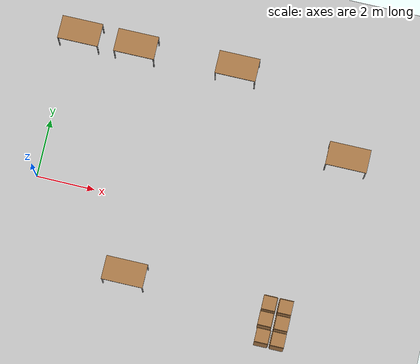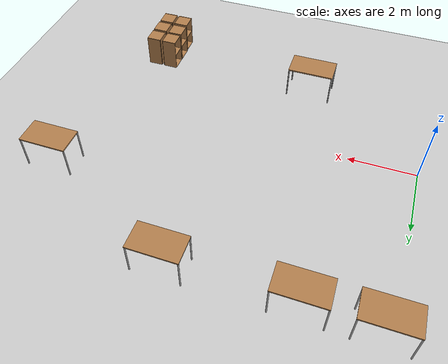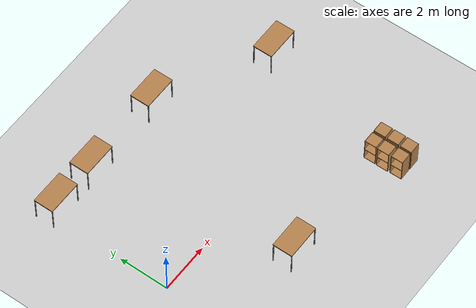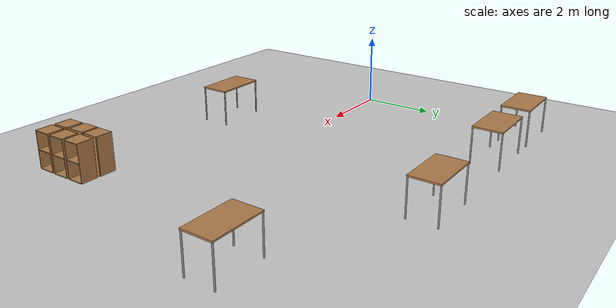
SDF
<sdf version="1.6">
 <world name="default">
  <model name="ground_plane">
   <static>1</static>
   <link name="link">
    <collision name="collision">
     <geometry><plane><normal>0 0 1</normal><size>100 100</size></plane></geometry>
     <surface><friction><ode><mu>100</mu><mu2>50</mu2></ode></friction></surface>
    </collision>
    <visual name="visual">
     <cast_shadows>0</cast_shadows>
     <geometry><plane><normal>0 0 1</normal><size>100 100</size></plane></geometry>
     <material>
      <script><uri>file://media/materials/scripts/gazebo.material</uri><name>Gazebo/Grey</name></script>
     </material>
    </visual>
   </link>
  </model>
  <model name="table_clone_2">
   <static>0</static>
   <link name="link">
    <collision name="surface">
     <pose>0 0 1 0 -0 0</pose>
     <geometry><box><size>1.5 0.8 0.03</size></box></geometry>
     <surface><friction><ode><mu>0.6</mu><mu2>0.6</mu2></ode></friction></surface>
    </collision>
    <visual name="visual1">
     <pose>0 0 1 0 -0 0</pose>
     <geometry><box><size>1.4 0.8 0.04</size></box></geometry>
     <material>
      <script><uri>file://media/materials/scripts/gazebo.material</uri><name>Gazebo/Wood</name></script>
     </material>
    </visual>
    <collision name="front_left_leg">
     <pose>0.68 0.38 0.5 0 -0 0</pose>
     <geometry><cylinder><radius>0.02</radius><length>1</length></cylinder></geometry>
    </collision>
    <visual name="front_left_leg">
     <pose>0.68 0.38 0.5 0 -0 0</pose>
     <geometry><cylinder><radius>0.02</radius><length>1</length></cylinder></geometry>
     <material>
      <script><uri>file://media/materials/scripts/gazebo.material</uri><name>Gazebo/Grey</name></script>
     </material>
    </visual>
    <collision name="front_right_leg">
     <pose>0.68 -0.38 0.5 0 -0 0</pose>
     <geometry><cylinder><radius>0.02</radius><length>1</length></cylinder></geometry>
    </collision>
    <visual name="front_right_leg">
     <pose>0.68 -0.38 0.5 0 -0 0</pose>
     <geometry><cylinder><radius>0.02</radius><length>1</length></cylinder></geometry>
     <material>
      <script><uri>file://media/materials/scripts/gazebo.material</uri><name>Gazebo/Grey</name></script>
     </material>
    </visual>
    <collision name="back_right_leg">
     <pose>-0.68 -0.38 0.5 0 -0 0</pose>
     <geometry><cylinder><radius>0.02</radius><length>1</length></cylinder></geometry>
    </collision>
    <visual name="back_right_leg">
     <pose>-0.68 -0.38 0.5 0 -0 0</pose>
     <geometry><cylinder><radius>0.02</radius><length>1</length></cylinder></geometry>
     <material>
      <script><uri>file://media/materials/scripts/gazebo.material</uri><name>Gazebo/Grey</name></script>
     </material>
    </visual>
    <collision name="back_left_leg">
     <pose>-0.68 0.38 0.5 0 -0 0</pose>
     <geometry><cylinder><radius>0.02</radius><length>1</length></cylinder></geometry>
    </collision>
    <visual name="back_left_leg">
     <pose>-0.68 0.38 0.5 0 -0 0</pose>
     <geometry><cylinder><radius>0.02</radius><length>1</length></cylinder></geometry>
     <material>
      <script><uri>file://media/materials/scripts/gazebo.material</uri><name>Gazebo/Grey</name></script>
     </material>
    </visual>
    <inertial>
     <inertia><ixx>1</ixx><ixy>0</ixy><ixz>0</ixz><iyy>1</iyy><iyz>0</iyz><izz>1</izz></inertia>
     <mass>1</mass>
    </inertial>
   </link>
   <pose>10.0761 2.81373 -4e-06 -2e-06 5e-06 -0</pose>
  </model>
  <model name="table_clone_4">
   <static>0</static>
   <link name="link">
    <collision name="surface">
     <pose>0 0 1 0 -0 0</pose>
     <geometry><box><size>1.5 0.8 0.03</size></box></geometry>
     <surface><friction><ode><mu>0.6</mu><mu2>0.6</mu2></ode></friction></surface>
    </collision>
    <visual name="visual1">
     <pose>0 0 1 0 -0 0</pose>
     <geometry><box><size>1.4 0.8 0.04</size></box></geometry>
     <material>
      <script><uri>file://media/materials/scripts/gazebo.material</uri><name>Gazebo/Wood</name></script>
     </material>
    </visual>
    <collision name="front_left_leg">
     <pose>0.68 0.38 0.5 0 -0 0</pose>
     <geometry><cylinder><radius>0.02</radius><length>1</length></cylinder></geometry>
    </collision>
    <visual name="front_left_leg">
     <pose>0.68 0.38 0.5 0 -0 0</pose>
     <geometry><cylinder><radius>0.02</radius><length>1</length></cylinder></geometry>
     <material>
      <script><uri>file://media/materials/scripts/gazebo.material</uri><name>Gazebo/Grey</name></script>
     </material>
    </visual>
    <collision name="front_right_leg">
     <pose>0.68 -0.38 0.5 0 -0 0</pose>
     <geometry><cylinder><radius>0.02</radius><length>1</length></cylinder></geometry>
    </collision>
    <visual name="front_right_leg">
     <pose>0.68 -0.38 0.5 0 -0 0</pose>
     <geometry><cylinder><radius>0.02</radius><length>1</length></cylinder></geometry>
     <material>
      <script><uri>file://media/materials/scripts/gazebo.material</uri><name>Gazebo/Grey</name></script>
     </material>
    </visual>
    <collision name="back_right_leg">
     <pose>-0.68 -0.38 0.5 0 -0 0</pose>
     <geometry><cylinder><radius>0.02</radius><length>1</length></cylinder></geometry>
    </collision>
    <visual name="back_right_leg">
     <pose>-0.68 -0.38 0.5 0 -0 0</pose>
     <geometry><cylinder><radius>0.02</radius><length>1</length></cylinder></geometry>
     <material>
      <script><uri>file://media/materials/scripts/gazebo.material</uri><name>Gazebo/Grey</name></script>
     </material>
    </visual>
    <collision name="back_left_leg">
     <pose>-0.68 0.38 0.5 0 -0 0</pose>
     <geometry><cylinder><radius>0.02</radius><length>1</length></cylinder></geometry>
    </collision>
    <visual name="back_left_leg">
     <pose>-0.68 0.38 0.5 0 -0 0</pose>
     <geometry><cylinder><radius>0.02</radius><length>1</length></cylinder></geometry>
     <material>
      <script><uri>file://media/materials/scripts/gazebo.material</uri><name>Gazebo/Grey</name></script>
     </material>
    </visual>
    <inertial>
     <inertia><ixx>1</ixx><ixy>0</ixy><ixz>0</ixz><iyy>1</iyy><iyz>0</iyz><izz>1</izz></inertia>
     <mass>1</mass>
    </inertial>
   </link>
   <pose>2.28726 5.00748 -1e-06 0 1e-06 0</pose>
  </model>
  <model name="table_clone_5">
   <static>0</static>
   <link name="link">
    <collision name="surface">
     <pose>0 0 1 0 -0 0</pose>
     <geometry><box><size>1.5 0.8 0.03</size></box></geometry>
     <surface><friction><ode><mu>0.6</mu><mu2>0.6</mu2></ode></friction></surface>
    </collision>
    <visual name="visual1">
     <pose>0 0 1 0 -0 0</pose>
     <geometry><box><size>1.4 0.8 0.04</size></box></geometry>
     <material>
      <script><uri>file://media/materials/scripts/gazebo.material</uri><name>Gazebo/Wood</name></script>
     </material>
    </visual>
    <collision name="front_left_leg">
     <pose>0.68 0.38 0.5 0 -0 0</pose>
     <geometry><cylinder><radius>0.02</radius><length>1</length></cylinder></geometry>
    </collision>
    <visual name="front_left_leg">
     <pose>0.68 0.38 0.5 0 -0 0</pose>
     <geometry><cylinder><radius>0.02</radius><length>1</length></cylinder></geometry>
     <material>
      <script><uri>file://media/materials/scripts/gazebo.material</uri><name>Gazebo/Grey</name></script>
     </material>
    </visual>
    <collision name="front_right_leg">
     <pose>0.68 -0.38 0.5 0 -0 0</pose>
     <geometry><cylinder><radius>0.02</radius><length>1</length></cylinder></geometry>
    </collision>
    <visual name="front_right_leg">
     <pose>0.68 -0.38 0.5 0 -0 0</pose>
     <geometry><cylinder><radius>0.02</radius><length>1</length></cylinder></geometry>
     <material>
      <script><uri>file://media/materials/scripts/gazebo.material</uri><name>Gazebo/Grey</name></script>
     </material>
    </visual>
    <collision name="back_right_leg">
     <pose>-0.68 -0.38 0.5 0 -0 0</pose>
     <geometry><cylinder><radius>0.02</radius><length>1</length></cylinder></geometry>
    </collision>
    <visual name="back_right_leg">
     <pose>-0.68 -0.38 0.5 0 -0 0</pose>
     <geometry><cylinder><radius>0.02</radius><length>1</length></cylinder></geometry>
     <material>
      <script><uri>file://media/materials/scripts/gazebo.material</uri><name>Gazebo/Grey</name></script>
     </material>
    </visual>
    <collision name="back_left_leg">
     <pose>-0.68 0.38 0.5 0 -0 0</pose>
     <geometry><cylinder><radius>0.02</radius><length>1</length></cylinder></geometry>
    </collision>
    <visual name="back_left_leg">
     <pose>-0.68 0.38 0.5 0 -0 0</pose>
     <geometry><cylinder><radius>0.02</radius><length>1</length></cylinder></geometry>
     <material>
      <script><uri>file://media/materials/scripts/gazebo.material</uri><name>Gazebo/Grey</name></script>
     </material>
    </visual>
    <inertial>
     <inertia><ixx>1</ixx><ixy>0</ixy><ixz>0</ixz><iyy>1</iyy><iyz>0</iyz><izz>1</izz></inertia>
     <mass>1</mass>
    </inertial>
   </link>
   <pose>5.78409 5.03322 -9e-06 0 -1e-06 0</pose>
  </model>
  <model name="table_clone_7">
   <static>0</static>
   <link name="link">
    <collision name="surface">
     <pose>0 0 1 0 -0 0</pose>
     <geometry><box><size>1.5 0.8 0.03</size></box></geometry>
     <surface><friction><ode><mu>0.6</mu><mu2>0.6</mu2></ode></friction></surface>
    </collision>
    <visual name="visual1">
     <pose>0 0 1 0 -0 0</pose>
     <geometry><box><size>1.4 0.8 0.04</size></box></geometry>
     <material>
      <script><uri>file://media/materials/scripts/gazebo.material</uri><name>Gazebo/Wood</name></script>
     </material>
    </visual>
    <collision name="front_left_leg">
     <pose>0.68 0.38 0.5 0 -0 0</pose>
     <geometry><cylinder><radius>0.02</radius><length>1</length></cylinder></geometry>
    </collision>
    <visual name="front_left_leg">
     <pose>0.68 0.38 0.5 0 -0 0</pose>
     <geometry><cylinder><radius>0.02</radius><length>1</length></cylinder></geometry>
     <material>
      <script><uri>file://media/materials/scripts/gazebo.material</uri><name>Gazebo/Grey</name></script>
     </material>
    </visual>
    <collision name="front_right_leg">
     <pose>0.68 -0.38 0.5 0 -0 0</pose>
     <geometry><cylinder><radius>0.02</radius><length>1</length></cylinder></geometry>
    </collision>
    <visual name="front_right_leg">
     <pose>0.68 -0.38 0.5 0 -0 0</pose>
     <geometry><cylinder><radius>0.02</radius><length>1</length></cylinder></geometry>
     <material>
      <script><uri>file://media/materials/scripts/gazebo.material</uri><name>Gazebo/Grey</name></script>
     </material>
    </visual>
    <collision name="back_right_leg">
     <pose>-0.68 -0.38 0.5 0 -0 0</pose>
     <geometry><cylinder><radius>0.02</radius><length>1</length></cylinder></geometry>
    </collision>
    <visual name="back_right_leg">
     <pose>-0.68 -0.38 0.5 0 -0 0</pose>
     <geometry><cylinder><radius>0.02</radius><length>1</length></cylinder></geometry>
     <material>
      <script><uri>file://media/materials/scripts/gazebo.material</uri><name>Gazebo/Grey</name></script>
     </material>
    </visual>
    <collision name="back_left_leg">
     <pose>-0.68 0.38 0.5 0 -0 0</pose>
     <geometry><cylinder><radius>0.02</radius><length>1</length></cylinder></geometry>
    </collision>
    <visual name="back_left_leg">
     <pose>-0.68 0.38 0.5 0 -0 0</pose>
     <geometry><cylinder><radius>0.02</radius><length>1</length></cylinder></geometry>
     <material>
      <script><uri>file://media/materials/scripts/gazebo.material</uri><name>Gazebo/Grey</name></script>
     </material>
    </visual>
    <inertial>
     <inertia><ixx>1</ixx><ixy>0</ixy><ixz>0</ixz><iyy>1</iyy><iyz>0</iyz><izz>1</izz></inertia>
     <mass>1</mass>
    </inertial>
   </link>
   <pose>0.33942 5.0178 -9e-06 0 -1e-06 0</pose>
  </model>
  <model name="table_clone_6_clone_1">
   <static>0</static>
   <link name="link">
    <collision name="surface">
     <pose>0 0 1 0 -0 0</pose>
     <geometry><box><size>1.5 0.8 0.03</size></box></geometry>
     <surface><friction><ode><mu>0.6</mu><mu2>0.6</mu2></ode></friction></surface>
    </collision>
    <visual name="visual1">
     <pose>0 0 1 0 -0 0</pose>
     <geometry><box><size>1.4 0.8 0.04</size></box></geometry>
     <material>
      <script><uri>file://media/materials/scripts/gazebo.material</uri><name>Gazebo/Wood</name></script>
     </material>
    </visual>
    <collision name="front_left_leg">
     <pose>0.68 0.38 0.5 0 -0 0</pose>
     <geometry><cylinder><radius>0.02</radius><length>1</length></cylinder></geometry>
    </collision>
    <visual name="front_left_leg">
     <pose>0.68 0.38 0.5 0 -0 0</pose>
     <geometry><cylinder><radius>0.02</radius><length>1</length></cylinder></geometry>
     <material>
      <script><uri>file://media/materials/scripts/gazebo.material</uri><name>Gazebo/Grey</name></script>
     </material>
    </visual>
    <collision name="front_right_leg">
     <pose>0.68 -0.38 0.5 0 -0 0</pose>
     <geometry><cylinder><radius>0.02</radius><length>1</length></cylinder></geometry>
    </collision>
    <visual name="front_right_leg">
     <pose>0.68 -0.38 0.5 0 -0 0</pose>
     <geometry><cylinder><radius>0.02</radius><length>1</length></cylinder></geometry>
     <material>
      <script><uri>file://media/materials/scripts/gazebo.material</uri><name>Gazebo/Grey</name></script>
     </material>
    </visual>
    <collision name="back_right_leg">
     <pose>-0.68 -0.38 0.5 0 -0 0</pose>
     <geometry><cylinder><radius>0.02</radius><length>1</length></cylinder></geometry>
    </collision>
    <visual name="back_right_leg">
     <pose>-0.68 -0.38 0.5 0 -0 0</pose>
     <geometry><cylinder><radius>0.02</radius><length>1</length></cylinder></geometry>
     <material>
      <script><uri>file://media/materials/scripts/gazebo.material</uri><name>Gazebo/Grey</name></script>
     </material>
    </visual>
    <collision name="back_left_leg">
     <pose>-0.68 0.38 0.5 0 -0 0</pose>
     <geometry><cylinder><radius>0.02</radius><length>1</length></cylinder></geometry>
    </collision>
    <visual name="back_left_leg">
     <pose>-0.68 0.38 0.5 0 -0 0</pose>
     <geometry><cylinder><radius>0.02</radius><length>1</length></cylinder></geometry>
     <material>
      <script><uri>file://media/materials/scripts/gazebo.material</uri><name>Gazebo/Grey</name></script>
     </material>
    </visual>
    <inertial>
     <inertia><ixx>1</ixx><ixy>0</ixy><ixz>0</ixz><iyy>1</iyy><iyz>0</iyz><izz>1</izz></inertia>
     <mass>1</mass>
    </inertial>
   </link>
   <pose>3.73124 -2.62043 -1e-06 -1e-06 0 0</pose>
  </model>
  <model name="cabinet">
   <static>1</static>
   <link name="cabinet_bottom_plate">
    <inertial>
     <pose>0 0 -1 0 -0 0</pose>
     <inertia><ixx>2.05</ixx><ixy>0</ixy><ixz>0</ixz><iyy>2.05</iyy><iyz>0</iyz><izz>2.05</izz></inertia>
     <mass>25</mass>
    </inertial>
    <collision name="cabinet_bottom_plate_geom">
     <pose>0 0 0.01 0 -0 0</pose>
     <geometry><box><size>0.45 0.45 0.02</size></box></geometry>
    </collision>
    <visual name="cabinet_bottom_plate_geom_visual">
     <pose>0 0 0.01 0 -0 0</pose>
     <geometry><box><size>0.45 0.45 0.02</size></box></geometry>
     <material>
      <script><uri>file://media/materials/scripts/gazebo.material</uri><name>Gazebo/Wood</name></script>
     </material>
    </visual>
    <collision name="cabinet_bottom_plate_geom_cabinet_back_plate">
     <pose>0.235 0 0.51 0 -0 0</pose>
     <geometry><box><size>0.02 0.45 1.02</size></box></geometry>
    </collision>
    <visual name="cabinet_bottom_plate_geom_cabinet_back_plate_visual">
     <pose>0.235 0 0.51 0 -0 0</pose>
     <geometry><box><size>0.02 0.45 1.02</size></box></geometry>
     <material>
      <script><uri>file://media/materials/scripts/gazebo.material</uri><name>Gazebo/Wood</name></script>
     </material>
    </visual>
    <collision name="cabinet_bottom_plate_geom_cabinet_left_plate">
     <pose>0 0.235 0.51 0 -0 0</pose>
     <geometry><box><size>0.45 0.02 1.02</size></box></geometry>
    </collision>
    <visual name="cabinet_bottom_plate_geom_cabinet_left_plate_visual">
     <pose>0 0.235 0.51 0 -0 0</pose>
     <geometry><box><size>0.45 0.02 1.02</size></box></geometry>
     <material>
      <script><uri>file://media/materials/scripts/gazebo.material</uri><name>Gazebo/Wood</name></script>
     </material>
    </visual>
    <collision name="cabinet_bottom_plate_geom_cabinet_middle_plate">
     <pose>0 0 0.51 0 -0 0</pose>
     <geometry><box><size>0.45 0.45 0.02</size></box></geometry>
    </collision>
    <visual name="cabinet_bottom_plate_geom_cabinet_middle_plate_visual">
     <pose>0 0 0.51 0 -0 0</pose>
     <geometry><box><size>0.45 0.45 0.02</size></box></geometry>
     <material>
      <script><uri>file://media/materials/scripts/gazebo.material</uri><name>Gazebo/Wood</name></script>
     </material>
    </visual>
    <collision name="cabinet_bottom_plate_geom_cabinet_right_plate">
     <pose>0 -0.235 0.51 0 -0 0</pose>
     <geometry><box><size>0.45 0.02 1.02</size></box></geometry>
    </collision>
    <visual name="cabinet_bottom_plate_geom_cabinet_right_plate_visual">
     <pose>0 -0.235 0.51 0 -0 0</pose>
     <geometry><box><size>0.45 0.02 1.02</size></box></geometry>
     <material>
      <script><uri>file://media/materials/scripts/gazebo.material</uri><name>Gazebo/Wood</name></script>
     </material>
    </visual>
    <collision name="cabinet_bottom_plate_geom_cabinet_top_plate">
     <pose>0 0 1.01 0 -0 0</pose>
     <geometry><box><size>0.45 0.45 0.02</size></box></geometry>
    </collision>
    <visual name="cabinet_bottom_plate_geom_cabinet_top_plate_visual">
     <pose>0 0 1.01 0 -0 0</pose>
     <geometry><box><size>0.45 0.45 0.02</size></box></geometry>
     <material>
      <script><uri>file://media/materials/scripts/gazebo.material</uri><name>Gazebo/Wood</name></script>
     </material>
    </visual>
   </link>
   <pose>9.14426 -2.55915 0 0 0 -3.13642</pose>
  </model>
  <model name="cabinet_clone">
   <static>1</static>
   <link name="cabinet_bottom_plate">
    <inertial>
     <pose>0 0 -1 0 -0 0</pose>
     <inertia><ixx>2.05</ixx><ixy>0</ixy><ixz>0</ixz><iyy>2.05</iyy><iyz>0</iyz><izz>2.05</izz></inertia>
     <mass>25</mass>
    </inertial>
    <collision name="cabinet_bottom_plate_geom">
     <pose>0 0 0.01 0 -0 0</pose>
     <geometry><box><size>0.45 0.45 0.02</size></box></geometry>
    </collision>
    <visual name="cabinet_bottom_plate_geom_visual">
     <pose>0 0 0.01 0 -0 0</pose>
     <geometry><box><size>0.45 0.45 0.02</size></box></geometry>
     <material>
      <script><uri>file://media/materials/scripts/gazebo.material</uri><name>Gazebo/Wood</name></script>
     </material>
    </visual>
    <collision name="cabinet_bottom_plate_geom_cabinet_back_plate">
     <pose>0.235 0 0.51 0 -0 0</pose>
     <geometry><box><size>0.02 0.45 1.02</size></box></geometry>
    </collision>
    <visual name="cabinet_bottom_plate_geom_cabinet_back_plate_visual">
     <pose>0.235 0 0.51 0 -0 0</pose>
     <geometry><box><size>0.02 0.45 1.02</size></box></geometry>
     <material>
      <script><uri>file://media/materials/scripts/gazebo.material</uri><name>Gazebo/Wood</name></script>
     </material>
    </visual>
    <collision name="cabinet_bottom_plate_geom_cabinet_left_plate">
     <pose>0 0.235 0.51 0 -0 0</pose>
     <geometry><box><size>0.45 0.02 1.02</size></box></geometry>
    </collision>
    <visual name="cabinet_bottom_plate_geom_cabinet_left_plate_visual">
     <pose>0 0.235 0.51 0 -0 0</pose>
     <geometry><box><size>0.45 0.02 1.02</size></box></geometry>
     <material>
      <script><uri>file://media/materials/scripts/gazebo.material</uri><name>Gazebo/Wood</name></script>
     </material>
    </visual>
    <collision name="cabinet_bottom_plate_geom_cabinet_middle_plate">
     <pose>0 0 0.51 0 -0 0</pose>
     <geometry><box><size>0.45 0.45 0.02</size></box></geometry>
    </collision>
    <visual name="cabinet_bottom_plate_geom_cabinet_middle_plate_visual">
     <pose>0 0 0.51 0 -0 0</pose>
     <geometry><box><size>0.45 0.45 0.02</size></box></geometry>
     <material>
      <script><uri>file://media/materials/scripts/gazebo.material</uri><name>Gazebo/Wood</name></script>
     </material>
    </visual>
    <collision name="cabinet_bottom_plate_geom_cabinet_right_plate">
     <pose>0 -0.235 0.51 0 -0 0</pose>
     <geometry><box><size>0.45 0.02 1.02</size></box></geometry>
    </collision>
    <visual name="cabinet_bottom_plate_geom_cabinet_right_plate_visual">
     <pose>0 -0.235 0.51 0 -0 0</pose>
     <geometry><box><size>0.45 0.02 1.02</size></box></geometry>
     <material>
      <script><uri>file://media/materials/scripts/gazebo.material</uri><name>Gazebo/Wood</name></script>
     </material>
    </visual>
    <collision name="cabinet_bottom_plate_geom_cabinet_top_plate">
     <pose>0 0 1.01 0 -0 0</pose>
     <geometry><box><size>0.45 0.45 0.02</size></box></geometry>
    </collision>
    <visual name="cabinet_bottom_plate_geom_cabinet_top_plate_visual">
     <pose>0 0 1.01 0 -0 0</pose>
     <geometry><box><size>0.45 0.45 0.02</size></box></geometry>
     <material>
      <script><uri>file://media/materials/scripts/gazebo.material</uri><name>Gazebo/Wood</name></script>
     </material>
    </visual>
   </link>
   <pose>8.59565 -2.55603 0 0 -0 0</pose>
  </model>
  <model name="cabinet_clone_clone">
   <static>1</static>
   <link name="cabinet_bottom_plate">
    <inertial>
     <pose>0 0 -1 0 -0 0</pose>
     <inertia><ixx>2.05</ixx><ixy>0</ixy><ixz>0</ixz><iyy>2.05</iyy><iyz>0</iyz><izz>2.05</izz></inertia>
     <mass>25</mass>
    </inertial>
    <collision name="cabinet_bottom_plate_geom">
     <pose>0 0 0.01 0 -0 0</pose>
     <geometry><box><size>0.45 0.45 0.02</size></box></geometry>
    </collision>
    <visual name="cabinet_bottom_plate_geom_visual">
     <pose>0 0 0.01 0 -0 0</pose>
     <geometry><box><size>0.45 0.45 0.02</size></box></geometry>
     <material>
      <script><uri>file://media/materials/scripts/gazebo.material</uri><name>Gazebo/Wood</name></script>
     </material>
    </visual>
    <collision name="cabinet_bottom_plate_geom_cabinet_back_plate">
     <pose>0.235 0 0.51 0 -0 0</pose>
     <geometry><box><size>0.02 0.45 1.02</size></box></geometry>
    </collision>
    <visual name="cabinet_bottom_plate_geom_cabinet_back_plate_visual">
     <pose>0.235 0 0.51 0 -0 0</pose>
     <geometry><box><size>0.02 0.45 1.02</size></box></geometry>
     <material>
      <script><uri>file://media/materials/scripts/gazebo.material</uri><name>Gazebo/Wood</name></script>
     </material>
    </visual>
    <collision name="cabinet_bottom_plate_geom_cabinet_left_plate">
     <pose>0 0.235 0.51 0 -0 0</pose>
     <geometry><box><size>0.45 0.02 1.02</size></box></geometry>
    </collision>
    <visual name="cabinet_bottom_plate_geom_cabinet_left_plate_visual">
     <pose>0 0.235 0.51 0 -0 0</pose>
     <geometry><box><size>0.45 0.02 1.02</size></box></geometry>
     <material>
      <script><uri>file://media/materials/scripts/gazebo.material</uri><name>Gazebo/Wood</name></script>
     </material>
    </visual>
    <collision name="cabinet_bottom_plate_geom_cabinet_middle_plate">
     <pose>0 0 0.51 0 -0 0</pose>
     <geometry><box><size>0.45 0.45 0.02</size></box></geometry>
    </collision>
    <visual name="cabinet_bottom_plate_geom_cabinet_middle_plate_visual">
     <pose>0 0 0.51 0 -0 0</pose>
     <geometry><box><size>0.45 0.45 0.02</size></box></geometry>
     <material>
      <script><uri>file://media/materials/scripts/gazebo.material</uri><name>Gazebo/Wood</name></script>
     </material>
    </visual>
    <collision name="cabinet_bottom_plate_geom_cabinet_right_plate">
     <pose>0 -0.235 0.51 0 -0 0</pose>
     <geometry><box><size>0.45 0.02 1.02</size></box></geometry>
    </collision>
    <visual name="cabinet_bottom_plate_geom_cabinet_right_plate_visual">
     <pose>0 -0.235 0.51 0 -0 0</pose>
     <geometry><box><size>0.45 0.02 1.02</size></box></geometry>
     <material>
      <script><uri>file://media/materials/scripts/gazebo.material</uri><name>Gazebo/Wood</name></script>
     </material>
    </visual>
    <collision name="cabinet_bottom_plate_geom_cabinet_top_plate">
     <pose>0 0 1.01 0 -0 0</pose>
     <geometry><box><size>0.45 0.45 0.02</size></box></geometry>
    </collision>
    <visual name="cabinet_bottom_plate_geom_cabinet_top_plate_visual">
     <pose>0 0 1.01 0 -0 0</pose>
     <geometry><box><size>0.45 0.45 0.02</size></box></geometry>
     <material>
      <script><uri>file://media/materials/scripts/gazebo.material</uri><name>Gazebo/Wood</name></script>
     </material>
    </visual>
   </link>
   <pose>8.58972 -3.08845 0 0 -0 0</pose>
  </model>
  <model name="cabinet_clone_clone_0">
   <static>1</static>
   <link name="cabinet_bottom_plate">
    <inertial>
     <pose>0 0 -1 0 -0 0</pose>
     <inertia><ixx>2.05</ixx><ixy>0</ixy><ixz>0</ixz><iyy>2.05</iyy><iyz>0</iyz><izz>2.05</izz></inertia>
     <mass>25</mass>
    </inertial>
    <collision name="cabinet_bottom_plate_geom">
     <pose>0 0 0.01 0 -0 0</pose>
     <geometry><box><size>0.45 0.45 0.02</size></box></geometry>
    </collision>
    <visual name="cabinet_bottom_plate_geom_visual">
     <pose>0 0 0.01 0 -0 0</pose>
     <geometry><box><size>0.45 0.45 0.02</size></box></geometry>
     <material>
      <script><uri>file://media/materials/scripts/gazebo.material</uri><name>Gazebo/Wood</name></script>
     </material>
    </visual>
    <collision name="cabinet_bottom_plate_geom_cabinet_back_plate">
     <pose>0.235 0 0.51 0 -0 0</pose>
     <geometry><box><size>0.02 0.45 1.02</size></box></geometry>
    </collision>
    <visual name="cabinet_bottom_plate_geom_cabinet_back_plate_visual">
     <pose>0.235 0 0.51 0 -0 0</pose>
     <geometry><box><size>0.02 0.45 1.02</size></box></geometry>
     <material>
      <script><uri>file://media/materials/scripts/gazebo.material</uri><name>Gazebo/Wood</name></script>
     </material>
    </visual>
    <collision name="cabinet_bottom_plate_geom_cabinet_left_plate">
     <pose>0 0.235 0.51 0 -0 0</pose>
     <geometry><box><size>0.45 0.02 1.02</size></box></geometry>
    </collision>
    <visual name="cabinet_bottom_plate_geom_cabinet_left_plate_visual">
     <pose>0 0.235 0.51 0 -0 0</pose>
     <geometry><box><size>0.45 0.02 1.02</size></box></geometry>
     <material>
      <script><uri>file://media/materials/scripts/gazebo.material</uri><name>Gazebo/Wood</name></script>
     </material>
    </visual>
    <collision name="cabinet_bottom_plate_geom_cabinet_middle_plate">
     <pose>0 0 0.51 0 -0 0</pose>
     <geometry><box><size>0.45 0.45 0.02</size></box></geometry>
    </collision>
    <visual name="cabinet_bottom_plate_geom_cabinet_middle_plate_visual">
     <pose>0 0 0.51 0 -0 0</pose>
     <geometry><box><size>0.45 0.45 0.02</size></box></geometry>
     <material>
      <script><uri>file://media/materials/scripts/gazebo.material</uri><name>Gazebo/Wood</name></script>
     </material>
    </visual>
    <collision name="cabinet_bottom_plate_geom_cabinet_right_plate">
     <pose>0 -0.235 0.51 0 -0 0</pose>
     <geometry><box><size>0.45 0.02 1.02</size></box></geometry>
    </collision>
    <visual name="cabinet_bottom_plate_geom_cabinet_right_plate_visual">
     <pose>0 -0.235 0.51 0 -0 0</pose>
     <geometry><box><size>0.45 0.02 1.02</size></box></geometry>
     <material>
      <script><uri>file://media/materials/scripts/gazebo.material</uri><name>Gazebo/Wood</name></script>
     </material>
    </visual>
    <collision name="cabinet_bottom_plate_geom_cabinet_top_plate">
     <pose>0 0 1.01 0 -0 0</pose>
     <geometry><box><size>0.45 0.45 0.02</size></box></geometry>
    </collision>
    <visual name="cabinet_bottom_plate_geom_cabinet_top_plate_visual">
     <pose>0 0 1.01 0 -0 0</pose>
     <geometry><box><size>0.45 0.45 0.02</size></box></geometry>
     <material>
      <script><uri>file://media/materials/scripts/gazebo.material</uri><name>Gazebo/Wood</name></script>
     </material>
    </visual>
   </link>
   <pose>8.60784 -3.65351 0 0 -0 0</pose>
  </model>
  <model name="cabinet_clone_0">
   <static>1</static>
   <link name="cabinet_bottom_plate">
    <inertial>
     <pose>0 0 -1 0 -0 0</pose>
     <inertia><ixx>2.05</ixx><ixy>0</ixy><ixz>0</ixz><iyy>2.05</iyy><iyz>0</iyz><izz>2.05</izz></inertia>
     <mass>25</mass>
    </inertial>
    <collision name="cabinet_bottom_plate_geom">
     <pose>0 0 0.01 0 -0 0</pose>
     <geometry><box><size>0.45 0.45 0.02</size></box></geometry>
    </collision>
    <visual name="cabinet_bottom_plate_geom_visual">
     <pose>0 0 0.01 0 -0 0</pose>
     <geometry><box><size>0.45 0.45 0.02</size></box></geometry>
     <material>
      <script><uri>file://media/materials/scripts/gazebo.material</uri><name>Gazebo/Wood</name></script>
     </material>
    </visual>
    <collision name="cabinet_bottom_plate_geom_cabinet_back_plate">
     <pose>0.235 0 0.51 0 -0 0</pose>
     <geometry><box><size>0.02 0.45 1.02</size></box></geometry>
    </collision>
    <visual name="cabinet_bottom_plate_geom_cabinet_back_plate_visual">
     <pose>0.235 0 0.51 0 -0 0</pose>
     <geometry><box><size>0.02 0.45 1.02</size></box></geometry>
     <material>
      <script><uri>file://media/materials/scripts/gazebo.material</uri><name>Gazebo/Wood</name></script>
     </material>
    </visual>
    <collision name="cabinet_bottom_plate_geom_cabinet_left_plate">
     <pose>0 0.235 0.51 0 -0 0</pose>
     <geometry><box><size>0.45 0.02 1.02</size></box></geometry>
    </collision>
    <visual name="cabinet_bottom_plate_geom_cabinet_left_plate_visual">
     <pose>0 0.235 0.51 0 -0 0</pose>
     <geometry><box><size>0.45 0.02 1.02</size></box></geometry>
     <material>
      <script><uri>file://media/materials/scripts/gazebo.material</uri><name>Gazebo/Wood</name></script>
     </material>
    </visual>
    <collision name="cabinet_bottom_plate_geom_cabinet_middle_plate">
     <pose>0 0 0.51 0 -0 0</pose>
     <geometry><box><size>0.45 0.45 0.02</size></box></geometry>
    </collision>
    <visual name="cabinet_bottom_plate_geom_cabinet_middle_plate_visual">
     <pose>0 0 0.51 0 -0 0</pose>
     <geometry><box><size>0.45 0.45 0.02</size></box></geometry>
     <material>
      <script><uri>file://media/materials/scripts/gazebo.material</uri><name>Gazebo/Wood</name></script>
     </material>
    </visual>
    <collision name="cabinet_bottom_plate_geom_cabinet_right_plate">
     <pose>0 -0.235 0.51 0 -0 0</pose>
     <geometry><box><size>0.45 0.02 1.02</size></box></geometry>
    </collision>
    <visual name="cabinet_bottom_plate_geom_cabinet_right_plate_visual">
     <pose>0 -0.235 0.51 0 -0 0</pose>
     <geometry><box><size>0.45 0.02 1.02</size></box></geometry>
     <material>
      <script><uri>file://media/materials/scripts/gazebo.material</uri><name>Gazebo/Wood</name></script>
     </material>
    </visual>
    <collision name="cabinet_bottom_plate_geom_cabinet_top_plate">
     <pose>0 0 1.01 0 -0 0</pose>
     <geometry><box><size>0.45 0.45 0.02</size></box></geometry>
    </collision>
    <visual name="cabinet_bottom_plate_geom_cabinet_top_plate_visual">
     <pose>0 0 1.01 0 -0 0</pose>
     <geometry><box><size>0.45 0.45 0.02</size></box></geometry>
     <material>
      <script><uri>file://media/materials/scripts/gazebo.material</uri><name>Gazebo/Wood</name></script>
     </material>
    </visual>
   </link>
   <pose>9.14933 -3.10915 0 0 0 -3.13642</pose>
  </model>
  <model name="cabinet_clone_1">
   <static>1</static>
   <link name="cabinet_bottom_plate">
    <inertial>
     <pose>0 0 -1 0 -0 0</pose>
     <inertia><ixx>2.05</ixx><ixy>0</ixy><ixz>0</ixz><iyy>2.05</iyy><iyz>0</iyz><izz>2.05</izz></inertia>
     <mass>25</mass>
    </inertial>
    <collision name="cabinet_bottom_plate_geom">
     <pose>0 0 0.01 0 -0 0</pose>
     <geometry><box><size>0.45 0.45 0.02</size></box></geometry>
    </collision>
    <visual name="cabinet_bottom_plate_geom_visual">
     <pose>0 0 0.01 0 -0 0</pose>
     <geometry><box><size>0.45 0.45 0.02</size></box></geometry>
     <material>
      <script><uri>file://media/materials/scripts/gazebo.material</uri><name>Gazebo/Wood</name></script>
     </material>
    </visual>
    <collision name="cabinet_bottom_plate_geom_cabinet_back_plate">
     <pose>0.235 0 0.51 0 -0 0</pose>
     <geometry><box><size>0.02 0.45 1.02</size></box></geometry>
    </collision>
    <visual name="cabinet_bottom_plate_geom_cabinet_back_plate_visual">
     <pose>0.235 0 0.51 0 -0 0</pose>
     <geometry><box><size>0.02 0.45 1.02</size></box></geometry>
     <material>
      <script><uri>file://media/materials/scripts/gazebo.material</uri><name>Gazebo/Wood</name></script>
     </material>
    </visual>
    <collision name="cabinet_bottom_plate_geom_cabinet_left_plate">
     <pose>0 0.235 0.51 0 -0 0</pose>
     <geometry><box><size>0.45 0.02 1.02</size></box></geometry>
    </collision>
    <visual name="cabinet_bottom_plate_geom_cabinet_left_plate_visual">
     <pose>0 0.235 0.51 0 -0 0</pose>
     <geometry><box><size>0.45 0.02 1.02</size></box></geometry>
     <material>
      <script><uri>file://media/materials/scripts/gazebo.material</uri><name>Gazebo/Wood</name></script>
     </material>
    </visual>
    <collision name="cabinet_bottom_plate_geom_cabinet_middle_plate">
     <pose>0 0 0.51 0 -0 0</pose>
     <geometry><box><size>0.45 0.45 0.02</size></box></geometry>
    </collision>
    <visual name="cabinet_bottom_plate_geom_cabinet_middle_plate_visual">
     <pose>0 0 0.51 0 -0 0</pose>
     <geometry><box><size>0.45 0.45 0.02</size></box></geometry>
     <material>
      <script><uri>file://media/materials/scripts/gazebo.material</uri><name>Gazebo/Wood</name></script>
     </material>
    </visual>
    <collision name="cabinet_bottom_plate_geom_cabinet_right_plate">
     <pose>0 -0.235 0.51 0 -0 0</pose>
     <geometry><box><size>0.45 0.02 1.02</size></box></geometry>
    </collision>
    <visual name="cabinet_bottom_plate_geom_cabinet_right_plate_visual">
     <pose>0 -0.235 0.51 0 -0 0</pose>
     <geometry><box><size>0.45 0.02 1.02</size></box></geometry>
     <material>
      <script><uri>file://media/materials/scripts/gazebo.material</uri><name>Gazebo/Wood</name></script>
     </material>
    </visual>
    <collision name="cabinet_bottom_plate_geom_cabinet_top_plate">
     <pose>0 0 1.01 0 -0 0</pose>
     <geometry><box><size>0.45 0.45 0.02</size></box></geometry>
    </collision>
    <visual name="cabinet_bottom_plate_geom_cabinet_top_plate_visual">
     <pose>0 0 1.01 0 -0 0</pose>
     <geometry><box><size>0.45 0.45 0.02</size></box></geometry>
     <material>
      <script><uri>file://media/materials/scripts/gazebo.material</uri><name>Gazebo/Wood</name></script>
     </material>
    </visual>
   </link>
   <pose>9.14745 -3.65902 0 0 0 -3.13642</pose>
  </model>
 </world>
</sdf>
